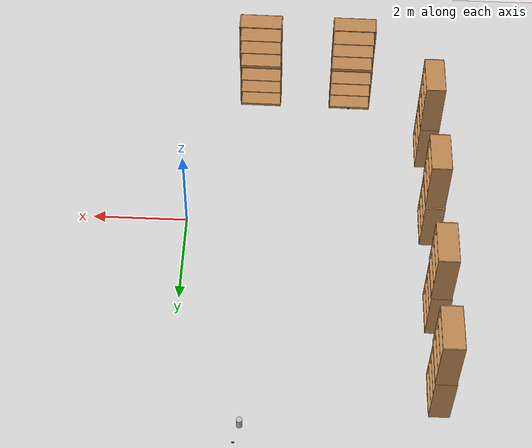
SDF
<sdf version="1.7">
 <world name="default">
  <model name="ground_plane">
   <static>1</static>
   <link name="link">
    <collision name="collision">
     <geometry><plane><normal>0 0 1</normal><size>100 100</size></plane></geometry>
     <surface><friction><ode><mu>100</mu><mu2>50</mu2></ode></friction></surface>
    </collision>
    <visual name="visual">
     <cast_shadows>0</cast_shadows>
     <geometry><plane><normal>0 0 1</normal><size>100 100</size></plane></geometry>
     <material>
      <script><uri>file://media/materials/scripts/gazebo.material</uri><name>Gazebo/Grey</name></script>
     </material>
    </visual>
   </link>
  </model>
  <model name="bookshelf_5_clone_2">
   <static>1</static>
   <link name="link">
    <inertial><mass>1</mass></inertial>
    <collision name="back">
     <pose>0 0.005 0.6 0 -0 0</pose>
     <geometry><box><size>0.9 0.01 1.2</size></box></geometry>
    </collision>
    <visual name="visual1">
     <pose>0 0.005 0.6 0 -0 0</pose>
     <geometry><box><size>0.9 0.01 1.2</size></box></geometry>
     <material>
      <script><uri>file://media/materials/scripts/gazebo.material</uri><name>Gazebo/Wood</name></script>
     </material>
    </visual>
    <collision name="left_side">
     <pose>0.45 -0.195 0.6 0 -0 0</pose>
     <geometry><box><size>0.02 0.4 1.2</size></box></geometry>
    </collision>
    <visual name="visual2">
     <pose>0.45 -0.195 0.6 0 -0 0</pose>
     <geometry><box><size>0.02 0.4 1.2</size></box></geometry>
     <material>
      <script><uri>file://media/materials/scripts/gazebo.material</uri><name>Gazebo/Wood</name></script>
     </material>
    </visual>
    <collision name="right_side">
     <pose>-0.45 -0.195 0.6 0 -0 0</pose>
     <geometry><box><size>0.02 0.4 1.2</size></box></geometry>
    </collision>
    <visual name="visual3">
     <pose>-0.45 -0.195 0.6 0 -0 0</pose>
     <geometry><box><size>0.02 0.4 1.2</size></box></geometry>
     <material>
      <script><uri>file://media/materials/scripts/gazebo.material</uri><name>Gazebo/Wood</name></script>
     </material>
    </visual>
    <collision name="bottom">
     <pose>0 -0.195 0.03 0 -0 0</pose>
     <geometry><box><size>0.88 0.4 0.06</size></box></geometry>
    </collision>
    <visual name="visual4">
     <pose>0 -0.195 0.03 0 -0 0</pose>
     <geometry><box><size>0.88 0.4 0.06</size></box></geometry>
     <material>
      <script><uri>file://media/materials/scripts/gazebo.material</uri><name>Gazebo/Wood</name></script>
     </material>
    </visual>
    <collision name="top">
     <pose>0 -0.195 1.19 0 -0 0</pose>
     <geometry><box><size>0.88 0.4 0.02</size></box></geometry>
    </collision>
    <visual name="visual5">
     <pose>0 -0.195 1.19 0 -0 0</pose>
     <geometry><box><size>0.88 0.4 0.02</size></box></geometry>
     <material>
      <script><uri>file://media/materials/scripts/gazebo.material</uri><name>Gazebo/Wood</name></script>
     </material>
    </visual>
    <collision name="low_shelf">
     <pose>0 -0.195 0.43 0 -0 0</pose>
     <geometry><box><size>0.88 0.4 0.02</size></box></geometry>
    </collision>
    <visual name="visual6">
     <pose>0 -0.195 0.43 0 -0 0</pose>
     <geometry><box><size>0.88 0.4 0.02</size></box></geometry>
     <material>
      <script><uri>file://media/materials/scripts/gazebo.material</uri><name>Gazebo/Wood</name></script>
     </material>
    </visual>
    <collision name="high_shelf">
     <pose>0 -0.195 0.8 0 -0 0</pose>
     <geometry><box><size>0.88 0.4 0.02</size></box></geometry>
    </collision>
    <visual name="visual7">
     <pose>0 -0.195 0.8 0 -0 0</pose>
     <geometry><box><size>0.88 0.4 0.02</size></box></geometry>
     <material>
      <script><uri>file://media/materials/scripts/gazebo.material</uri><name>Gazebo/Wood</name></script>
     </material>
    </visual>
   </link>
   <pose>-1.42311 -3.81825 0 0 -0 3.12955</pose>
  </model>
  <model name="bookshelf_5_clone_5">
   <static>1</static>
   <link name="link">
    <inertial><mass>1</mass></inertial>
    <collision name="back">
     <pose>0 0.005 0.6 0 -0 0</pose>
     <geometry><box><size>0.9 0.01 1.2</size></box></geometry>
    </collision>
    <visual name="visual1">
     <pose>0 0.005 0.6 0 -0 0</pose>
     <geometry><box><size>0.9 0.01 1.2</size></box></geometry>
     <material>
      <script><uri>file://media/materials/scripts/gazebo.material</uri><name>Gazebo/Wood</name></script>
     </material>
    </visual>
    <collision name="left_side">
     <pose>0.45 -0.195 0.6 0 -0 0</pose>
     <geometry><box><size>0.02 0.4 1.2</size></box></geometry>
    </collision>
    <visual name="visual2">
     <pose>0.45 -0.195 0.6 0 -0 0</pose>
     <geometry><box><size>0.02 0.4 1.2</size></box></geometry>
     <material>
      <script><uri>file://media/materials/scripts/gazebo.material</uri><name>Gazebo/Wood</name></script>
     </material>
    </visual>
    <collision name="right_side">
     <pose>-0.45 -0.195 0.6 0 -0 0</pose>
     <geometry><box><size>0.02 0.4 1.2</size></box></geometry>
    </collision>
    <visual name="visual3">
     <pose>-0.45 -0.195 0.6 0 -0 0</pose>
     <geometry><box><size>0.02 0.4 1.2</size></box></geometry>
     <material>
      <script><uri>file://media/materials/scripts/gazebo.material</uri><name>Gazebo/Wood</name></script>
     </material>
    </visual>
    <collision name="bottom">
     <pose>0 -0.195 0.03 0 -0 0</pose>
     <geometry><box><size>0.88 0.4 0.06</size></box></geometry>
    </collision>
    <visual name="visual4">
     <pose>0 -0.195 0.03 0 -0 0</pose>
     <geometry><box><size>0.88 0.4 0.06</size></box></geometry>
     <material>
      <script><uri>file://media/materials/scripts/gazebo.material</uri><name>Gazebo/Wood</name></script>
     </material>
    </visual>
    <collision name="top">
     <pose>0 -0.195 1.19 0 -0 0</pose>
     <geometry><box><size>0.88 0.4 0.02</size></box></geometry>
    </collision>
    <visual name="visual5">
     <pose>0 -0.195 1.19 0 -0 0</pose>
     <geometry><box><size>0.88 0.4 0.02</size></box></geometry>
     <material>
      <script><uri>file://media/materials/scripts/gazebo.material</uri><name>Gazebo/Wood</name></script>
     </material>
    </visual>
    <collision name="low_shelf">
     <pose>0 -0.195 0.43 0 -0 0</pose>
     <geometry><box><size>0.88 0.4 0.02</size></box></geometry>
    </collision>
    <visual name="visual6">
     <pose>0 -0.195 0.43 0 -0 0</pose>
     <geometry><box><size>0.88 0.4 0.02</size></box></geometry>
     <material>
      <script><uri>file://media/materials/scripts/gazebo.material</uri><name>Gazebo/Wood</name></script>
     </material>
    </visual>
    <collision name="high_shelf">
     <pose>0 -0.195 0.8 0 -0 0</pose>
     <geometry><box><size>0.88 0.4 0.02</size></box></geometry>
    </collision>
    <visual name="visual7">
     <pose>0 -0.195 0.8 0 -0 0</pose>
     <geometry><box><size>0.88 0.4 0.02</size></box></geometry>
     <material>
      <script><uri>file://media/materials/scripts/gazebo.material</uri><name>Gazebo/Wood</name></script>
     </material>
    </visual>
   </link>
   <pose>-3.44979 -3.80253 0 0 -0 3.12955</pose>
  </model>
  <model name="bookshelf_5_clone_clone_0">
   <static>1</static>
   <link name="link">
    <inertial><mass>1</mass></inertial>
    <collision name="back">
     <pose>0 0.005 0.6 0 -0 0</pose>
     <geometry><box><size>0.9 0.01 1.2</size></box></geometry>
    </collision>
    <visual name="visual1">
     <pose>0 0.005 0.6 0 -0 0</pose>
     <geometry><box><size>0.9 0.01 1.2</size></box></geometry>
     <material>
      <script><uri>file://media/materials/scripts/gazebo.material</uri><name>Gazebo/Wood</name></script>
     </material>
    </visual>
    <collision name="left_side">
     <pose>0.45 -0.195 0.6 0 -0 0</pose>
     <geometry><box><size>0.02 0.4 1.2</size></box></geometry>
    </collision>
    <visual name="visual2">
     <pose>0.45 -0.195 0.6 0 -0 0</pose>
     <geometry><box><size>0.02 0.4 1.2</size></box></geometry>
     <material>
      <script><uri>file://media/materials/scripts/gazebo.material</uri><name>Gazebo/Wood</name></script>
     </material>
    </visual>
    <collision name="right_side">
     <pose>-0.45 -0.195 0.6 0 -0 0</pose>
     <geometry><box><size>0.02 0.4 1.2</size></box></geometry>
    </collision>
    <visual name="visual3">
     <pose>-0.45 -0.195 0.6 0 -0 0</pose>
     <geometry><box><size>0.02 0.4 1.2</size></box></geometry>
     <material>
      <script><uri>file://media/materials/scripts/gazebo.material</uri><name>Gazebo/Wood</name></script>
     </material>
    </visual>
    <collision name="bottom">
     <pose>0 -0.195 0.03 0 -0 0</pose>
     <geometry><box><size>0.88 0.4 0.06</size></box></geometry>
    </collision>
    <visual name="visual4">
     <pose>0 -0.195 0.03 0 -0 0</pose>
     <geometry><box><size>0.88 0.4 0.06</size></box></geometry>
     <material>
      <script><uri>file://media/materials/scripts/gazebo.material</uri><name>Gazebo/Wood</name></script>
     </material>
    </visual>
    <collision name="top">
     <pose>0 -0.195 1.19 0 -0 0</pose>
     <geometry><box><size>0.88 0.4 0.02</size></box></geometry>
    </collision>
    <visual name="visual5">
     <pose>0 -0.195 1.19 0 -0 0</pose>
     <geometry><box><size>0.88 0.4 0.02</size></box></geometry>
     <material>
      <script><uri>file://media/materials/scripts/gazebo.material</uri><name>Gazebo/Wood</name></script>
     </material>
    </visual>
    <collision name="low_shelf">
     <pose>0 -0.195 0.43 0 -0 0</pose>
     <geometry><box><size>0.88 0.4 0.02</size></box></geometry>
    </collision>
    <visual name="visual6">
     <pose>0 -0.195 0.43 0 -0 0</pose>
     <geometry><box><size>0.88 0.4 0.02</size></box></geometry>
     <material>
      <script><uri>file://media/materials/scripts/gazebo.material</uri><name>Gazebo/Wood</name></script>
     </material>
    </visual>
    <collision name="high_shelf">
     <pose>0 -0.195 0.8 0 -0 0</pose>
     <geometry><box><size>0.88 0.4 0.02</size></box></geometry>
    </collision>
    <visual name="visual7">
     <pose>0 -0.195 0.8 0 -0 0</pose>
     <geometry><box><size>0.88 0.4 0.02</size></box></geometry>
     <material>
      <script><uri>file://media/materials/scripts/gazebo.material</uri><name>Gazebo/Wood</name></script>
     </material>
    </visual>
   </link>
   <pose>-1.41694 -3.81004 1.21139 0 -0 3.12955</pose>
  </model>
  <model name="bookshelf_5_clone_clone_1">
   <static>1</static>
   <link name="link">
    <inertial><mass>1</mass></inertial>
    <collision name="back">
     <pose>0 0.005 0.6 0 -0 0</pose>
     <geometry><box><size>0.9 0.01 1.2</size></box></geometry>
    </collision>
    <visual name="visual1">
     <pose>0 0.005 0.6 0 -0 0</pose>
     <geometry><box><size>0.9 0.01 1.2</size></box></geometry>
     <material>
      <script><uri>file://media/materials/scripts/gazebo.material</uri><name>Gazebo/Wood</name></script>
     </material>
    </visual>
    <collision name="left_side">
     <pose>0.45 -0.195 0.6 0 -0 0</pose>
     <geometry><box><size>0.02 0.4 1.2</size></box></geometry>
    </collision>
    <visual name="visual2">
     <pose>0.45 -0.195 0.6 0 -0 0</pose>
     <geometry><box><size>0.02 0.4 1.2</size></box></geometry>
     <material>
      <script><uri>file://media/materials/scripts/gazebo.material</uri><name>Gazebo/Wood</name></script>
     </material>
    </visual>
    <collision name="right_side">
     <pose>-0.45 -0.195 0.6 0 -0 0</pose>
     <geometry><box><size>0.02 0.4 1.2</size></box></geometry>
    </collision>
    <visual name="visual3">
     <pose>-0.45 -0.195 0.6 0 -0 0</pose>
     <geometry><box><size>0.02 0.4 1.2</size></box></geometry>
     <material>
      <script><uri>file://media/materials/scripts/gazebo.material</uri><name>Gazebo/Wood</name></script>
     </material>
    </visual>
    <collision name="bottom">
     <pose>0 -0.195 0.03 0 -0 0</pose>
     <geometry><box><size>0.88 0.4 0.06</size></box></geometry>
    </collision>
    <visual name="visual4">
     <pose>0 -0.195 0.03 0 -0 0</pose>
     <geometry><box><size>0.88 0.4 0.06</size></box></geometry>
     <material>
      <script><uri>file://media/materials/scripts/gazebo.material</uri><name>Gazebo/Wood</name></script>
     </material>
    </visual>
    <collision name="top">
     <pose>0 -0.195 1.19 0 -0 0</pose>
     <geometry><box><size>0.88 0.4 0.02</size></box></geometry>
    </collision>
    <visual name="visual5">
     <pose>0 -0.195 1.19 0 -0 0</pose>
     <geometry><box><size>0.88 0.4 0.02</size></box></geometry>
     <material>
      <script><uri>file://media/materials/scripts/gazebo.material</uri><name>Gazebo/Wood</name></script>
     </material>
    </visual>
    <collision name="low_shelf">
     <pose>0 -0.195 0.43 0 -0 0</pose>
     <geometry><box><size>0.88 0.4 0.02</size></box></geometry>
    </collision>
    <visual name="visual6">
     <pose>0 -0.195 0.43 0 -0 0</pose>
     <geometry><box><size>0.88 0.4 0.02</size></box></geometry>
     <material>
      <script><uri>file://media/materials/scripts/gazebo.material</uri><name>Gazebo/Wood</name></script>
     </material>
    </visual>
    <collision name="high_shelf">
     <pose>0 -0.195 0.8 0 -0 0</pose>
     <geometry><box><size>0.88 0.4 0.02</size></box></geometry>
    </collision>
    <visual name="visual7">
     <pose>0 -0.195 0.8 0 -0 0</pose>
     <geometry><box><size>0.88 0.4 0.02</size></box></geometry>
     <material>
      <script><uri>file://media/materials/scripts/gazebo.material</uri><name>Gazebo/Wood</name></script>
     </material>
    </visual>
   </link>
   <pose>-3.44383 -3.79926 1.21139 0 -0 3.12955</pose>
  </model>
  <model name="bookshelf_0_clone_0">
   <static>1</static>
   <link name="link">
    <inertial><mass>1</mass></inertial>
    <collision name="back">
     <pose>0 0.005 0.6 0 -0 0</pose>
     <geometry><box><size>0.9 0.01 1.2</size></box></geometry>
    </collision>
    <visual name="visual1">
     <pose>0 0.005 0.6 0 -0 0</pose>
     <geometry><box><size>0.9 0.01 1.2</size></box></geometry>
     <material>
      <script><uri>file://media/materials/scripts/gazebo.material</uri><name>Gazebo/Wood</name></script>
     </material>
    </visual>
    <collision name="left_side">
     <pose>0.45 -0.195 0.6 0 -0 0</pose>
     <geometry><box><size>0.02 0.4 1.2</size></box></geometry>
    </collision>
    <visual name="visual2">
     <pose>0.45 -0.195 0.6 0 -0 0</pose>
     <geometry><box><size>0.02 0.4 1.2</size></box></geometry>
     <material>
      <script><uri>file://media/materials/scripts/gazebo.material</uri><name>Gazebo/Wood</name></script>
     </material>
    </visual>
    <collision name="right_side">
     <pose>-0.45 -0.195 0.6 0 -0 0</pose>
     <geometry><box><size>0.02 0.4 1.2</size></box></geometry>
    </collision>
    <visual name="visual3">
     <pose>-0.45 -0.195 0.6 0 -0 0</pose>
     <geometry><box><size>0.02 0.4 1.2</size></box></geometry>
     <material>
      <script><uri>file://media/materials/scripts/gazebo.material</uri><name>Gazebo/Wood</name></script>
     </material>
    </visual>
    <collision name="bottom">
     <pose>0 -0.195 0.03 0 -0 0</pose>
     <geometry><box><size>0.88 0.4 0.06</size></box></geometry>
    </collision>
    <visual name="visual4">
     <pose>0 -0.195 0.03 0 -0 0</pose>
     <geometry><box><size>0.88 0.4 0.06</size></box></geometry>
     <material>
      <script><uri>file://media/materials/scripts/gazebo.material</uri><name>Gazebo/Wood</name></script>
     </material>
    </visual>
    <collision name="top">
     <pose>0 -0.195 1.19 0 -0 0</pose>
     <geometry><box><size>0.88 0.4 0.02</size></box></geometry>
    </collision>
    <visual name="visual5">
     <pose>0 -0.195 1.19 0 -0 0</pose>
     <geometry><box><size>0.88 0.4 0.02</size></box></geometry>
     <material>
      <script><uri>file://media/materials/scripts/gazebo.material</uri><name>Gazebo/Wood</name></script>
     </material>
    </visual>
    <collision name="low_shelf">
     <pose>0 -0.195 0.43 0 -0 0</pose>
     <geometry><box><size>0.88 0.4 0.02</size></box></geometry>
    </collision>
    <visual name="visual6">
     <pose>0 -0.195 0.43 0 -0 0</pose>
     <geometry><box><size>0.88 0.4 0.02</size></box></geometry>
     <material>
      <script><uri>file://media/materials/scripts/gazebo.material</uri><name>Gazebo/Wood</name></script>
     </material>
    </visual>
    <collision name="high_shelf">
     <pose>0 -0.195 0.8 0 -0 0</pose>
     <geometry><box><size>0.88 0.4 0.02</size></box></geometry>
    </collision>
    <visual name="visual7">
     <pose>0 -0.195 0.8 0 -0 0</pose>
     <geometry><box><size>0.88 0.4 0.02</size></box></geometry>
     <material>
      <script><uri>file://media/materials/scripts/gazebo.material</uri><name>Gazebo/Wood</name></script>
     </material>
    </visual>
   </link>
   <pose>-5.30935 -0.025093 0 0 -0 1.5697</pose>
  </model>
  <model name="bookshelf_0_clone_0_clone">
   <static>1</static>
   <link name="link">
    <inertial><mass>1</mass></inertial>
    <collision name="back">
     <pose>0 0.005 0.6 0 -0 0</pose>
     <geometry><box><size>0.9 0.01 1.2</size></box></geometry>
    </collision>
    <visual name="visual1">
     <pose>0 0.005 0.6 0 -0 0</pose>
     <geometry><box><size>0.9 0.01 1.2</size></box></geometry>
     <material>
      <script><uri>file://media/materials/scripts/gazebo.material</uri><name>Gazebo/Wood</name></script>
     </material>
    </visual>
    <collision name="left_side">
     <pose>0.45 -0.195 0.6 0 -0 0</pose>
     <geometry><box><size>0.02 0.4 1.2</size></box></geometry>
    </collision>
    <visual name="visual2">
     <pose>0.45 -0.195 0.6 0 -0 0</pose>
     <geometry><box><size>0.02 0.4 1.2</size></box></geometry>
     <material>
      <script><uri>file://media/materials/scripts/gazebo.material</uri><name>Gazebo/Wood</name></script>
     </material>
    </visual>
    <collision name="right_side">
     <pose>-0.45 -0.195 0.6 0 -0 0</pose>
     <geometry><box><size>0.02 0.4 1.2</size></box></geometry>
    </collision>
    <visual name="visual3">
     <pose>-0.45 -0.195 0.6 0 -0 0</pose>
     <geometry><box><size>0.02 0.4 1.2</size></box></geometry>
     <material>
      <script><uri>file://media/materials/scripts/gazebo.material</uri><name>Gazebo/Wood</name></script>
     </material>
    </visual>
    <collision name="bottom">
     <pose>0 -0.195 0.03 0 -0 0</pose>
     <geometry><box><size>0.88 0.4 0.06</size></box></geometry>
    </collision>
    <visual name="visual4">
     <pose>0 -0.195 0.03 0 -0 0</pose>
     <geometry><box><size>0.88 0.4 0.06</size></box></geometry>
     <material>
      <script><uri>file://media/materials/scripts/gazebo.material</uri><name>Gazebo/Wood</name></script>
     </material>
    </visual>
    <collision name="top">
     <pose>0 -0.195 1.19 0 -0 0</pose>
     <geometry><box><size>0.88 0.4 0.02</size></box></geometry>
    </collision>
    <visual name="visual5">
     <pose>0 -0.195 1.19 0 -0 0</pose>
     <geometry><box><size>0.88 0.4 0.02</size></box></geometry>
     <material>
      <script><uri>file://media/materials/scripts/gazebo.material</uri><name>Gazebo/Wood</name></script>
     </material>
    </visual>
    <collision name="low_shelf">
     <pose>0 -0.195 0.43 0 -0 0</pose>
     <geometry><box><size>0.88 0.4 0.02</size></box></geometry>
    </collision>
    <visual name="visual6">
     <pose>0 -0.195 0.43 0 -0 0</pose>
     <geometry><box><size>0.88 0.4 0.02</size></box></geometry>
     <material>
      <script><uri>file://media/materials/scripts/gazebo.material</uri><name>Gazebo/Wood</name></script>
     </material>
    </visual>
    <collision name="high_shelf">
     <pose>0 -0.195 0.8 0 -0 0</pose>
     <geometry><box><size>0.88 0.4 0.02</size></box></geometry>
    </collision>
    <visual name="visual7">
     <pose>0 -0.195 0.8 0 -0 0</pose>
     <geometry><box><size>0.88 0.4 0.02</size></box></geometry>
     <material>
      <script><uri>file://media/materials/scripts/gazebo.material</uri><name>Gazebo/Wood</name></script>
     </material>
    </visual>
   </link>
   <pose>-5.33454 2.15943 0 0 -0 1.5697</pose>
  </model>
  <model name="bookshelf_0_clone_0_clone_0">
   <static>1</static>
   <link name="link">
    <inertial><mass>1</mass></inertial>
    <collision name="back">
     <pose>0 0.005 0.6 0 -0 0</pose>
     <geometry><box><size>0.9 0.01 1.2</size></box></geometry>
    </collision>
    <visual name="visual1">
     <pose>0 0.005 0.6 0 -0 0</pose>
     <geometry><box><size>0.9 0.01 1.2</size></box></geometry>
     <material>
      <script><uri>file://media/materials/scripts/gazebo.material</uri><name>Gazebo/Wood</name></script>
     </material>
    </visual>
    <collision name="left_side">
     <pose>0.45 -0.195 0.6 0 -0 0</pose>
     <geometry><box><size>0.02 0.4 1.2</size></box></geometry>
    </collision>
    <visual name="visual2">
     <pose>0.45 -0.195 0.6 0 -0 0</pose>
     <geometry><box><size>0.02 0.4 1.2</size></box></geometry>
     <material>
      <script><uri>file://media/materials/scripts/gazebo.material</uri><name>Gazebo/Wood</name></script>
     </material>
    </visual>
    <collision name="right_side">
     <pose>-0.45 -0.195 0.6 0 -0 0</pose>
     <geometry><box><size>0.02 0.4 1.2</size></box></geometry>
    </collision>
    <visual name="visual3">
     <pose>-0.45 -0.195 0.6 0 -0 0</pose>
     <geometry><box><size>0.02 0.4 1.2</size></box></geometry>
     <material>
      <script><uri>file://media/materials/scripts/gazebo.material</uri><name>Gazebo/Wood</name></script>
     </material>
    </visual>
    <collision name="bottom">
     <pose>0 -0.195 0.03 0 -0 0</pose>
     <geometry><box><size>0.88 0.4 0.06</size></box></geometry>
    </collision>
    <visual name="visual4">
     <pose>0 -0.195 0.03 0 -0 0</pose>
     <geometry><box><size>0.88 0.4 0.06</size></box></geometry>
     <material>
      <script><uri>file://media/materials/scripts/gazebo.material</uri><name>Gazebo/Wood</name></script>
     </material>
    </visual>
    <collision name="top">
     <pose>0 -0.195 1.19 0 -0 0</pose>
     <geometry><box><size>0.88 0.4 0.02</size></box></geometry>
    </collision>
    <visual name="visual5">
     <pose>0 -0.195 1.19 0 -0 0</pose>
     <geometry><box><size>0.88 0.4 0.02</size></box></geometry>
     <material>
      <script><uri>file://media/materials/scripts/gazebo.material</uri><name>Gazebo/Wood</name></script>
     </material>
    </visual>
    <collision name="low_shelf">
     <pose>0 -0.195 0.43 0 -0 0</pose>
     <geometry><box><size>0.88 0.4 0.02</size></box></geometry>
    </collision>
    <visual name="visual6">
     <pose>0 -0.195 0.43 0 -0 0</pose>
     <geometry><box><size>0.88 0.4 0.02</size></box></geometry>
     <material>
      <script><uri>file://media/materials/scripts/gazebo.material</uri><name>Gazebo/Wood</name></script>
     </material>
    </visual>
    <collision name="high_shelf">
     <pose>0 -0.195 0.8 0 -0 0</pose>
     <geometry><box><size>0.88 0.4 0.02</size></box></geometry>
    </collision>
    <visual name="visual7">
     <pose>0 -0.195 0.8 0 -0 0</pose>
     <geometry><box><size>0.88 0.4 0.02</size></box></geometry>
     <material>
      <script><uri>file://media/materials/scripts/gazebo.material</uri><name>Gazebo/Wood</name></script>
     </material>
    </visual>
   </link>
   <pose>-5.32765 4.01778 0 0 -0 1.5697</pose>
  </model>
  <model name="bookshelf_0_clone_0_clone_1_clone_0">
   <static>1</static>
   <link name="link">
    <inertial><mass>1</mass></inertial>
    <collision name="back">
     <pose>0 0.005 0.6 0 -0 0</pose>
     <geometry><box><size>0.9 0.01 1.2</size></box></geometry>
    </collision>
    <visual name="visual1">
     <pose>0 0.005 0.6 0 -0 0</pose>
     <geometry><box><size>0.9 0.01 1.2</size></box></geometry>
     <material>
      <script><uri>file://media/materials/scripts/gazebo.material</uri><name>Gazebo/Wood</name></script>
     </material>
    </visual>
    <collision name="left_side">
     <pose>0.45 -0.195 0.6 0 -0 0</pose>
     <geometry><box><size>0.02 0.4 1.2</size></box></geometry>
    </collision>
    <visual name="visual2">
     <pose>0.45 -0.195 0.6 0 -0 0</pose>
     <geometry><box><size>0.02 0.4 1.2</size></box></geometry>
     <material>
      <script><uri>file://media/materials/scripts/gazebo.material</uri><name>Gazebo/Wood</name></script>
     </material>
    </visual>
    <collision name="right_side">
     <pose>-0.45 -0.195 0.6 0 -0 0</pose>
     <geometry><box><size>0.02 0.4 1.2</size></box></geometry>
    </collision>
    <visual name="visual3">
     <pose>-0.45 -0.195 0.6 0 -0 0</pose>
     <geometry><box><size>0.02 0.4 1.2</size></box></geometry>
     <material>
      <script><uri>file://media/materials/scripts/gazebo.material</uri><name>Gazebo/Wood</name></script>
     </material>
    </visual>
    <collision name="bottom">
     <pose>0 -0.195 0.03 0 -0 0</pose>
     <geometry><box><size>0.88 0.4 0.06</size></box></geometry>
    </collision>
    <visual name="visual4">
     <pose>0 -0.195 0.03 0 -0 0</pose>
     <geometry><box><size>0.88 0.4 0.06</size></box></geometry>
     <material>
      <script><uri>file://media/materials/scripts/gazebo.material</uri><name>Gazebo/Wood</name></script>
     </material>
    </visual>
    <collision name="top">
     <pose>0 -0.195 1.19 0 -0 0</pose>
     <geometry><box><size>0.88 0.4 0.02</size></box></geometry>
    </collision>
    <visual name="visual5">
     <pose>0 -0.195 1.19 0 -0 0</pose>
     <geometry><box><size>0.88 0.4 0.02</size></box></geometry>
     <material>
      <script><uri>file://media/materials/scripts/gazebo.material</uri><name>Gazebo/Wood</name></script>
     </material>
    </visual>
    <collision name="low_shelf">
     <pose>0 -0.195 0.43 0 -0 0</pose>
     <geometry><box><size>0.88 0.4 0.02</size></box></geometry>
    </collision>
    <visual name="visual6">
     <pose>0 -0.195 0.43 0 -0 0</pose>
     <geometry><box><size>0.88 0.4 0.02</size></box></geometry>
     <material>
      <script><uri>file://media/materials/scripts/gazebo.material</uri><name>Gazebo/Wood</name></script>
     </material>
    </visual>
    <collision name="high_shelf">
     <pose>0 -0.195 0.8 0 -0 0</pose>
     <geometry><box><size>0.88 0.4 0.02</size></box></geometry>
    </collision>
    <visual name="visual7">
     <pose>0 -0.195 0.8 0 -0 0</pose>
     <geometry><box><size>0.88 0.4 0.02</size></box></geometry>
     <material>
      <script><uri>file://media/materials/scripts/gazebo.material</uri><name>Gazebo/Wood</name></script>
     </material>
    </visual>
   </link>
   <pose>-5.32334 2.15341 1.21067 0 -0 1.5697</pose>
  </model>
  <model name="bookshelf_0_clone_0_clone_1_clone_1">
   <static>1</static>
   <link name="link">
    <inertial><mass>1</mass></inertial>
    <collision name="back">
     <pose>0 0.005 0.6 0 -0 0</pose>
     <geometry><box><size>0.9 0.01 1.2</size></box></geometry>
    </collision>
    <visual name="visual1">
     <pose>0 0.005 0.6 0 -0 0</pose>
     <geometry><box><size>0.9 0.01 1.2</size></box></geometry>
     <material>
      <script><uri>file://media/materials/scripts/gazebo.material</uri><name>Gazebo/Wood</name></script>
     </material>
    </visual>
    <collision name="left_side">
     <pose>0.45 -0.195 0.6 0 -0 0</pose>
     <geometry><box><size>0.02 0.4 1.2</size></box></geometry>
    </collision>
    <visual name="visual2">
     <pose>0.45 -0.195 0.6 0 -0 0</pose>
     <geometry><box><size>0.02 0.4 1.2</size></box></geometry>
     <material>
      <script><uri>file://media/materials/scripts/gazebo.material</uri><name>Gazebo/Wood</name></script>
     </material>
    </visual>
    <collision name="right_side">
     <pose>-0.45 -0.195 0.6 0 -0 0</pose>
     <geometry><box><size>0.02 0.4 1.2</size></box></geometry>
    </collision>
    <visual name="visual3">
     <pose>-0.45 -0.195 0.6 0 -0 0</pose>
     <geometry><box><size>0.02 0.4 1.2</size></box></geometry>
     <material>
      <script><uri>file://media/materials/scripts/gazebo.material</uri><name>Gazebo/Wood</name></script>
     </material>
    </visual>
    <collision name="bottom">
     <pose>0 -0.195 0.03 0 -0 0</pose>
     <geometry><box><size>0.88 0.4 0.06</size></box></geometry>
    </collision>
    <visual name="visual4">
     <pose>0 -0.195 0.03 0 -0 0</pose>
     <geometry><box><size>0.88 0.4 0.06</size></box></geometry>
     <material>
      <script><uri>file://media/materials/scripts/gazebo.material</uri><name>Gazebo/Wood</name></script>
     </material>
    </visual>
    <collision name="top">
     <pose>0 -0.195 1.19 0 -0 0</pose>
     <geometry><box><size>0.88 0.4 0.02</size></box></geometry>
    </collision>
    <visual name="visual5">
     <pose>0 -0.195 1.19 0 -0 0</pose>
     <geometry><box><size>0.88 0.4 0.02</size></box></geometry>
     <material>
      <script><uri>file://media/materials/scripts/gazebo.material</uri><name>Gazebo/Wood</name></script>
     </material>
    </visual>
    <collision name="low_shelf">
     <pose>0 -0.195 0.43 0 -0 0</pose>
     <geometry><box><size>0.88 0.4 0.02</size></box></geometry>
    </collision>
    <visual name="visual6">
     <pose>0 -0.195 0.43 0 -0 0</pose>
     <geometry><box><size>0.88 0.4 0.02</size></box></geometry>
     <material>
      <script><uri>file://media/materials/scripts/gazebo.material</uri><name>Gazebo/Wood</name></script>
     </material>
    </visual>
    <collision name="high_shelf">
     <pose>0 -0.195 0.8 0 -0 0</pose>
     <geometry><box><size>0.88 0.4 0.02</size></box></geometry>
    </collision>
    <visual name="visual7">
     <pose>0 -0.195 0.8 0 -0 0</pose>
     <geometry><box><size>0.88 0.4 0.02</size></box></geometry>
     <material>
      <script><uri>file://media/materials/scripts/gazebo.material</uri><name>Gazebo/Wood</name></script>
     </material>
    </visual>
   </link>
   <pose>-5.31196 4.0164 1.21067 0 -0 1.5697</pose>
  </model>
  <model name="bookshelf_0_clone_0_clone_1">
   <static>1</static>
   <link name="link">
    <inertial><mass>1</mass></inertial>
    <collision name="back">
     <pose>0 0.005 0.6 0 -0 0</pose>
     <geometry><box><size>0.9 0.01 1.2</size></box></geometry>
    </collision>
    <visual name="visual1">
     <pose>0 0.005 0.6 0 -0 0</pose>
     <geometry><box><size>0.9 0.01 1.2</size></box></geometry>
     <material>
      <script><uri>file://media/materials/scripts/gazebo.material</uri><name>Gazebo/Wood</name></script>
     </material>
    </visual>
    <collision name="left_side">
     <pose>0.45 -0.195 0.6 0 -0 0</pose>
     <geometry><box><size>0.02 0.4 1.2</size></box></geometry>
    </collision>
    <visual name="visual2">
     <pose>0.45 -0.195 0.6 0 -0 0</pose>
     <geometry><box><size>0.02 0.4 1.2</size></box></geometry>
     <material>
      <script><uri>file://media/materials/scripts/gazebo.material</uri><name>Gazebo/Wood</name></script>
     </material>
    </visual>
    <collision name="right_side">
     <pose>-0.45 -0.195 0.6 0 -0 0</pose>
     <geometry><box><size>0.02 0.4 1.2</size></box></geometry>
    </collision>
    <visual name="visual3">
     <pose>-0.45 -0.195 0.6 0 -0 0</pose>
     <geometry><box><size>0.02 0.4 1.2</size></box></geometry>
     <material>
      <script><uri>file://media/materials/scripts/gazebo.material</uri><name>Gazebo/Wood</name></script>
     </material>
    </visual>
    <collision name="bottom">
     <pose>0 -0.195 0.03 0 -0 0</pose>
     <geometry><box><size>0.88 0.4 0.06</size></box></geometry>
    </collision>
    <visual name="visual4">
     <pose>0 -0.195 0.03 0 -0 0</pose>
     <geometry><box><size>0.88 0.4 0.06</size></box></geometry>
     <material>
      <script><uri>file://media/materials/scripts/gazebo.material</uri><name>Gazebo/Wood</name></script>
     </material>
    </visual>
    <collision name="top">
     <pose>0 -0.195 1.19 0 -0 0</pose>
     <geometry><box><size>0.88 0.4 0.02</size></box></geometry>
    </collision>
    <visual name="visual5">
     <pose>0 -0.195 1.19 0 -0 0</pose>
     <geometry><box><size>0.88 0.4 0.02</size></box></geometry>
     <material>
      <script><uri>file://media/materials/scripts/gazebo.material</uri><name>Gazebo/Wood</name></script>
     </material>
    </visual>
    <collision name="low_shelf">
     <pose>0 -0.195 0.43 0 -0 0</pose>
     <geometry><box><size>0.88 0.4 0.02</size></box></geometry>
    </collision>
    <visual name="visual6">
     <pose>0 -0.195 0.43 0 -0 0</pose>
     <geometry><box><size>0.88 0.4 0.02</size></box></geometry>
     <material>
      <script><uri>file://media/materials/scripts/gazebo.material</uri><name>Gazebo/Wood</name></script>
     </material>
    </visual>
    <collision name="high_shelf">
     <pose>0 -0.195 0.8 0 -0 0</pose>
     <geometry><box><size>0.88 0.4 0.02</size></box></geometry>
    </collision>
    <visual name="visual7">
     <pose>0 -0.195 0.8 0 -0 0</pose>
     <geometry><box><size>0.88 0.4 0.02</size></box></geometry>
     <material>
      <script><uri>file://media/materials/scripts/gazebo.material</uri><name>Gazebo/Wood</name></script>
     </material>
    </visual>
   </link>
   <pose>-5.28921 -2.17241 0 0 -0 1.5697</pose>
  </model>
  <model name="bookshelf_0_clone_0_clone_1_clone_0_clone">
   <static>1</static>
   <link name="link">
    <inertial><mass>1</mass></inertial>
    <collision name="back">
     <pose>0 0.005 0.6 0 -0 0</pose>
     <geometry><box><size>0.9 0.01 1.2</size></box></geometry>
    </collision>
    <visual name="visual1">
     <pose>0 0.005 0.6 0 -0 0</pose>
     <geometry><box><size>0.9 0.01 1.2</size></box></geometry>
     <material>
      <script><uri>file://media/materials/scripts/gazebo.material</uri><name>Gazebo/Wood</name></script>
     </material>
    </visual>
    <collision name="left_side">
     <pose>0.45 -0.195 0.6 0 -0 0</pose>
     <geometry><box><size>0.02 0.4 1.2</size></box></geometry>
    </collision>
    <visual name="visual2">
     <pose>0.45 -0.195 0.6 0 -0 0</pose>
     <geometry><box><size>0.02 0.4 1.2</size></box></geometry>
     <material>
      <script><uri>file://media/materials/scripts/gazebo.material</uri><name>Gazebo/Wood</name></script>
     </material>
    </visual>
    <collision name="right_side">
     <pose>-0.45 -0.195 0.6 0 -0 0</pose>
     <geometry><box><size>0.02 0.4 1.2</size></box></geometry>
    </collision>
    <visual name="visual3">
     <pose>-0.45 -0.195 0.6 0 -0 0</pose>
     <geometry><box><size>0.02 0.4 1.2</size></box></geometry>
     <material>
      <script><uri>file://media/materials/scripts/gazebo.material</uri><name>Gazebo/Wood</name></script>
     </material>
    </visual>
    <collision name="bottom">
     <pose>0 -0.195 0.03 0 -0 0</pose>
     <geometry><box><size>0.88 0.4 0.06</size></box></geometry>
    </collision>
    <visual name="visual4">
     <pose>0 -0.195 0.03 0 -0 0</pose>
     <geometry><box><size>0.88 0.4 0.06</size></box></geometry>
     <material>
      <script><uri>file://media/materials/scripts/gazebo.material</uri><name>Gazebo/Wood</name></script>
     </material>
    </visual>
    <collision name="top">
     <pose>0 -0.195 1.19 0 -0 0</pose>
     <geometry><box><size>0.88 0.4 0.02</size></box></geometry>
    </collision>
    <visual name="visual5">
     <pose>0 -0.195 1.19 0 -0 0</pose>
     <geometry><box><size>0.88 0.4 0.02</size></box></geometry>
     <material>
      <script><uri>file://media/materials/scripts/gazebo.material</uri><name>Gazebo/Wood</name></script>
     </material>
    </visual>
    <collision name="low_shelf">
     <pose>0 -0.195 0.43 0 -0 0</pose>
     <geometry><box><size>0.88 0.4 0.02</size></box></geometry>
    </collision>
    <visual name="visual6">
     <pose>0 -0.195 0.43 0 -0 0</pose>
     <geometry><box><size>0.88 0.4 0.02</size></box></geometry>
     <material>
      <script><uri>file://media/materials/scripts/gazebo.material</uri><name>Gazebo/Wood</name></script>
     </material>
    </visual>
    <collision name="high_shelf">
     <pose>0 -0.195 0.8 0 -0 0</pose>
     <geometry><box><size>0.88 0.4 0.02</size></box></geometry>
    </collision>
    <visual name="visual7">
     <pose>0 -0.195 0.8 0 -0 0</pose>
     <geometry><box><size>0.88 0.4 0.02</size></box></geometry>
     <material>
      <script><uri>file://media/materials/scripts/gazebo.material</uri><name>Gazebo/Wood</name></script>
     </material>
    </visual>
   </link>
   <pose>-5.30537 -0.057137 1.21067 0 -0 1.5697</pose>
  </model>
  <model name="bookshelf_0_clone_0_clone_1_clone_0_clone_0">
   <static>1</static>
   <link name="link">
    <inertial><mass>1</mass></inertial>
    <collision name="back">
     <pose>0 0.005 0.6 0 -0 0</pose>
     <geometry><box><size>0.9 0.01 1.2</size></box></geometry>
    </collision>
    <visual name="visual1">
     <pose>0 0.005 0.6 0 -0 0</pose>
     <geometry><box><size>0.9 0.01 1.2</size></box></geometry>
     <material>
      <script><uri>file://media/materials/scripts/gazebo.material</uri><name>Gazebo/Wood</name></script>
     </material>
    </visual>
    <collision name="left_side">
     <pose>0.45 -0.195 0.6 0 -0 0</pose>
     <geometry><box><size>0.02 0.4 1.2</size></box></geometry>
    </collision>
    <visual name="visual2">
     <pose>0.45 -0.195 0.6 0 -0 0</pose>
     <geometry><box><size>0.02 0.4 1.2</size></box></geometry>
     <material>
      <script><uri>file://media/materials/scripts/gazebo.material</uri><name>Gazebo/Wood</name></script>
     </material>
    </visual>
    <collision name="right_side">
     <pose>-0.45 -0.195 0.6 0 -0 0</pose>
     <geometry><box><size>0.02 0.4 1.2</size></box></geometry>
    </collision>
    <visual name="visual3">
     <pose>-0.45 -0.195 0.6 0 -0 0</pose>
     <geometry><box><size>0.02 0.4 1.2</size></box></geometry>
     <material>
      <script><uri>file://media/materials/scripts/gazebo.material</uri><name>Gazebo/Wood</name></script>
     </material>
    </visual>
    <collision name="bottom">
     <pose>0 -0.195 0.03 0 -0 0</pose>
     <geometry><box><size>0.88 0.4 0.06</size></box></geometry>
    </collision>
    <visual name="visual4">
     <pose>0 -0.195 0.03 0 -0 0</pose>
     <geometry><box><size>0.88 0.4 0.06</size></box></geometry>
     <material>
      <script><uri>file://media/materials/scripts/gazebo.material</uri><name>Gazebo/Wood</name></script>
     </material>
    </visual>
    <collision name="top">
     <pose>0 -0.195 1.19 0 -0 0</pose>
     <geometry><box><size>0.88 0.4 0.02</size></box></geometry>
    </collision>
    <visual name="visual5">
     <pose>0 -0.195 1.19 0 -0 0</pose>
     <geometry><box><size>0.88 0.4 0.02</size></box></geometry>
     <material>
      <script><uri>file://media/materials/scripts/gazebo.material</uri><name>Gazebo/Wood</name></script>
     </material>
    </visual>
    <collision name="low_shelf">
     <pose>0 -0.195 0.43 0 -0 0</pose>
     <geometry><box><size>0.88 0.4 0.02</size></box></geometry>
    </collision>
    <visual name="visual6">
     <pose>0 -0.195 0.43 0 -0 0</pose>
     <geometry><box><size>0.88 0.4 0.02</size></box></geometry>
     <material>
      <script><uri>file://media/materials/scripts/gazebo.material</uri><name>Gazebo/Wood</name></script>
     </material>
    </visual>
    <collision name="high_shelf">
     <pose>0 -0.195 0.8 0 -0 0</pose>
     <geometry><box><size>0.88 0.4 0.02</size></box></geometry>
    </collision>
    <visual name="visual7">
     <pose>0 -0.195 0.8 0 -0 0</pose>
     <geometry><box><size>0.88 0.4 0.02</size></box></geometry>
     <material>
      <script><uri>file://media/materials/scripts/gazebo.material</uri><name>Gazebo/Wood</name></script>
     </material>
    </visual>
   </link>
   <pose>-5.28921 -2.17241 1.21067 0 -0 1.5697</pose>
  </model>
  <model name="beer_3_clone_clone_clone_clone_clone">
   <link name="link">
    <pose>0 0 0.115 0 -0 0</pose>
    <inertial>
     <mass>0.39</mass>
     <inertia><ixx>0.00058</ixx><ixy>0</ixy><ixz>0</ixz><iyy>0.00058</iyy><iyz>0</iyz><izz>0.00019</izz></inertia>
    </inertial>
    <collision name="collision">
     <geometry><cylinder><radius>0.055</radius><length>0.23</length></cylinder></geometry>
    </collision>
    <visual name="visual">
     <geometry><cylinder><radius>0.055</radius><length>0.23</length></cylinder></geometry>
     <material>
      <script>
       <uri>model://beer/materials/scripts</uri>
       <uri>model://beer/materials/textures</uri>
       <name>Beer/Diffuse</name>
      </script>
     </material>
    </visual>
   </link>
   <pose>-1.42478 5.2548 0.810002 1.7e-05 2.8e-05 0.029768</pose>
  </model>
  <model name="blackcube_clone_0">
   <static>1</static>
   <link name="link">
    <pose>0 0 0.03 0 -0 0</pose>
    <collision name="collision"><geometry><box><size>0.1 0.1 0.1</size></box></geometry></collision>
    <visual name="visual">
     <geometry><box><size>0.05 0.01 0.05</size></box></geometry>
     <material>
      <script><uri>file://media/materials/scripts/gazebo.material</uri><name>Gazebo/Black</name></script>
     </material>
    </visual>
   </link>
   <pose>-3.43735 -3.39836 0 0 -0 0</pose>
  </model>
  <model name="blackcube_0_clone_clone_clone">
   <static>1</static>
   <link name="link">
    <pose>0 0 0.03 0 -0 0</pose>
    <collision name="collision"><geometry><box><size>0.1 0.1 0.1</size></box></geometry></collision>
    <visual name="visual">
     <geometry><box><size>0.05 0.01 0.05</size></box></geometry>
     <material>
      <script><uri>file://media/materials/scripts/gazebo.material</uri><name>Gazebo/Black</name></script>
     </material>
    </visual>
   </link>
   <pose>-4.90943 -0.036155 0 0 0 -1.57453</pose>
  </model>
  <model name="blackcube_0_clone_clone_clone_0">
   <static>1</static>
   <link name="link">
    <pose>0 0 0.03 0 -0 0</pose>
    <collision name="collision"><geometry><box><size>0.1 0.1 0.1</size></box></geometry></collision>
    <visual name="visual">
     <geometry><box><size>0.05 0.01 0.05</size></box></geometry>
     <material>
      <script><uri>file://media/materials/scripts/gazebo.material</uri><name>Gazebo/Black</name></script>
     </material>
    </visual>
   </link>
   <pose>-4.92792 4.00925 0 0 0 -1.57453</pose>
  </model>
  <model name="blackcube_clone_1">
   <static>1</static>
   <link name="link">
    <pose>0 0 0.03 0 -0 0</pose>
    <collision name="collision"><geometry><box><size>0.1 0.1 0.1</size></box></geometry></collision>
    <visual name="visual">
     <geometry><box><size>0.05 0.01 0.05</size></box></geometry>
     <material>
      <script><uri>file://media/materials/scripts/gazebo.material</uri><name>Gazebo/Black</name></script>
     </material>
    </visual>
   </link>
   <pose>-1.29155 5.19416 0 0 -0 0</pose>
  </model>
 </world>
</sdf>
